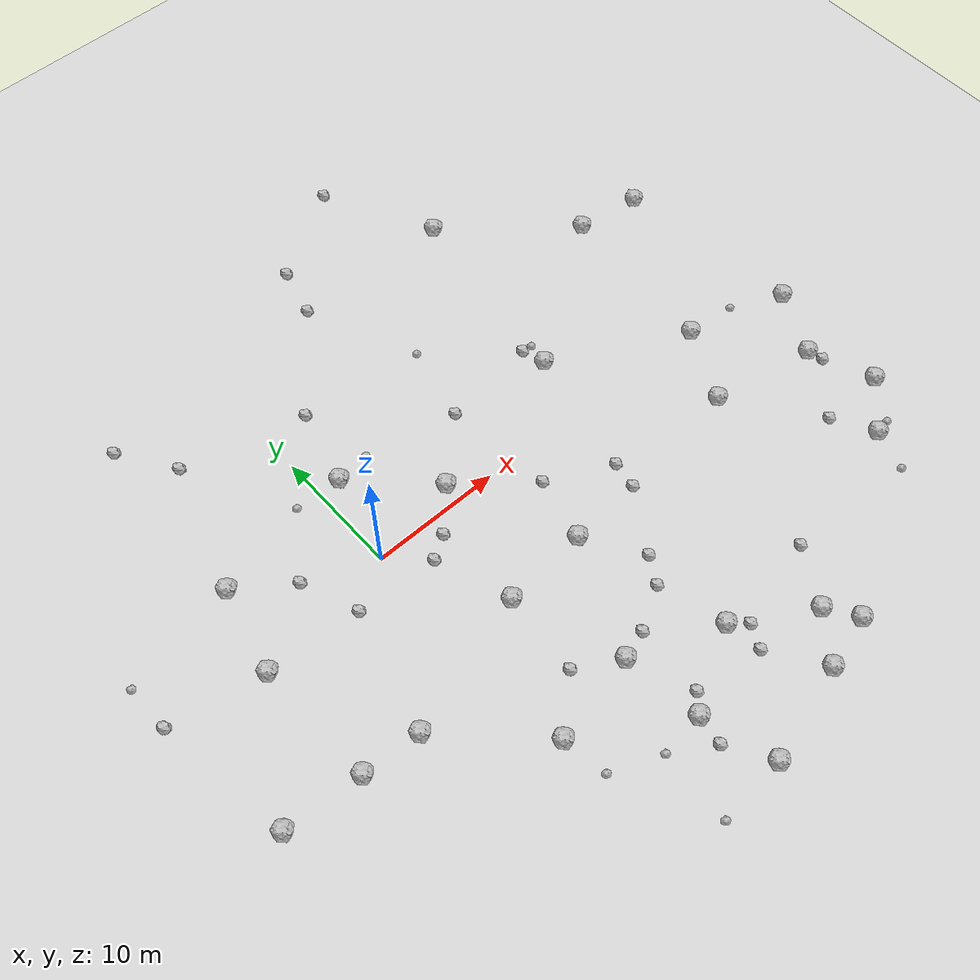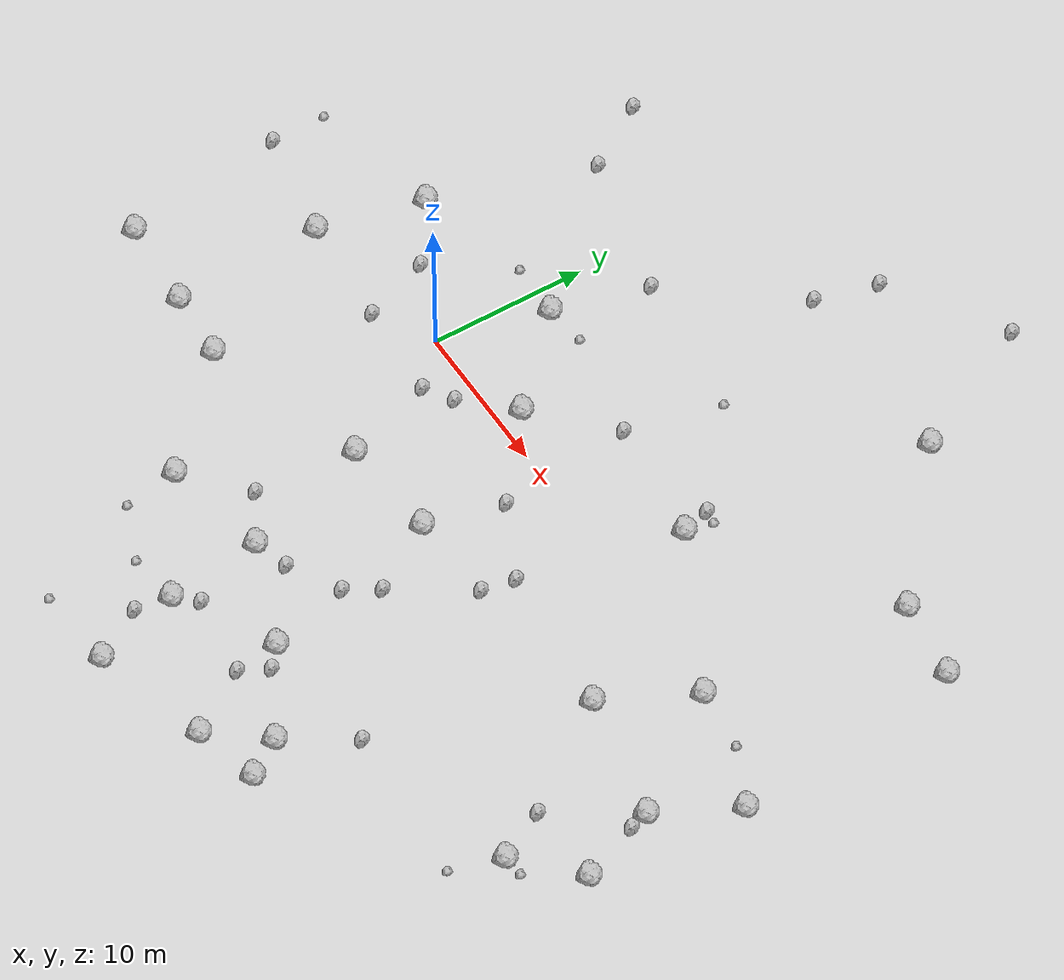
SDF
<sdf version="1.6">
 <world name="default">
  <include><uri>model://custom_ground</uri></include>
  <include><uri>model://sun</uri></include>
  <model name="rock1_0_0">
   <include><uri>model://rock1</uri><pose>14.003152754416249 -19.172089309877126 0.5 0 0 0</pose></include>
  </model>
  <model name="rock1_0_1">
   <include><uri>model://rock1</uri><pose>-10.769497221475962 -1.6153621248733714 0.5 0 0 0</pose></include>
  </model>
  <model name="rock1_0_2">
   <include><uri>model://rock1</uri><pose>-9.219295211612037 5.029225498820701 0.5 0 0 0</pose></include>
  </model>
  <model name="rock1_0_3">
   <include><uri>model://rock1</uri><pose>26.798721019652056 -6.222210888823977 0.5 0 0 0</pose></include>
  </model>
  <model name="rock1_0_4">
   <include><uri>model://rock1</uri><pose>-16.409507815319724 -10.679864082211793 0.5 0 0 0</pose></include>
  </model>
  <model name="rock1_0_5">
   <include><uri>model://rock1</uri><pose>21.055822012386884 -24.901092174642812 0.5 0 0 0</pose></include>
  </model>
  <model name="rock1_0_6">
   <include><uri>model://rock1</uri><pose>34.85470821379378 -7.82175812655511 0.5 0 0 0</pose></include>
  </model>
  <model name="rock1_0_7">
   <include><uri>model://rock1</uri><pose>7.269582818066841 -16.510152945980835 0.5 0 0 0</pose></include>
  </model>
  <model name="rock1_0_8">
   <include><uri>model://rock1</uri><pose>37.43791030881973 -2.932541775579651 0.5 0 0 0</pose></include>
  </model>
  <model name="rock1_0_9">
   <include><uri>model://rock1</uri><pose>21.78607754828959 19.998094251555756 0.5 0 0 0</pose></include>
  </model>
  <model name="rock1_0_10">
   <include><uri>model://rock1</uri><pose>30.75779689441147 12.34537848764922 0.5 0 0 0</pose></include>
  </model>
  <model name="rock1_0_11">
   <include><uri>model://rock1</uri><pose>33.23190222995296 -15.998293530328434 0.5 0 0 0</pose></include>
  </model>
  <model name="rock1_0_12">
   <include><uri>model://rock1</uri><pose>-10.50353050738606 -11.117603569233875 0.5 0 0 0</pose></include>
  </model>
  <model name="rock1_0_13">
   <include><uri>model://rock1</uri><pose>16.944692215354152 -25.94789619877936 0.5 0 0 0</pose></include>
  </model>
  <model name="rock1_0_14">
   <include><uri>model://rock1</uri><pose>-6.054517044995237 -11.423847118010645 0.5 0 0 0</pose></include>
  </model>
  <model name="rock1_0_15">
   <include><uri>model://rock1</uri><pose>7.972226254529836 -22.481924310800768 0.5 0 0 0</pose></include>
  </model>
  <model name="rock1_0_16">
   <include><uri>model://rock1</uri><pose>29.67631738772043 -0.6907466967468707 0.5 0 0 0</pose></include>
  </model>
  <model name="rock1_0_17">
   <include><uri>model://rock1</uri><pose>19.588181543198026 -22.6142936922495 0.5 0 0 0</pose></include>
  </model>
  <model name="rock1_0_18">
   <include><uri>model://rock1</uri><pose>35.79826095948114 11.627722984927736 0.5 0 0 0</pose></include>
  </model>
  <model name="rock1_0_19">
   <include><uri>model://rock1</uri><pose>11.194022819033098 -7.799987242348646 0.5 0 0 0</pose></include>
  </model>
  <model name="rock1_0_20">
   <include><uri>model://rock1</uri><pose>7.173253872946997 1.4170511199053806 0.5 0 0 0</pose></include>
  </model>
  <model name="rock1_0_21">
   <include><uri>model://rock1</uri><pose>4.626203410921704 -8.291863220499462 0.5 0 0 0</pose></include>
  </model>
  <model name="rock1_0_22">
   <include><uri>model://rock1</uri><pose>9.550269785202008 -27.939003110961423 0.5 0 0 0</pose></include>
  </model>
  <model name="rock1_0_23">
   <include><uri>model://rock1</uri><pose>36.696982578919226 -12.739101668206189 0.5 0 0 0</pose></include>
  </model>
  <model name="rock1_0_24">
   <include><uri>model://rock1</uri><pose>1.812405688505244 6.779470506799619 0.5 0 0 0</pose></include>
  </model>
  <model name="rock1_0_25">
   <include><uri>model://rock1</uri><pose>19.525953290873247 4.636568248175415 0.5 0 0 0</pose></include>
  </model>
  <model name="rock1_0_26">
   <include><uri>model://rock1</uri><pose>0.4283806910543895 -17.83017192072367 0.5 0 0 0</pose></include>
  </model>
  <model name="rock2_0_0">
   <include><uri>model://rock2</uri><pose>22.115333299509828 -18.475516153143587 0.3 0 0 0</pose></include>
  </model>
  <model name="rock2_0_1">
   <include><uri>model://rock2</uri><pose>9.296399754992926 20.259388664598745 0.3 0 0 0</pose></include>
  </model>
  <model name="rock2_0_2">
   <include><uri>model://rock2</uri><pose>2.6312842386152084 -2.528047752219152 0.3 0 0 0</pose></include>
  </model>
  <model name="rock2_0_3">
   <include><uri>model://rock2</uri><pose>16.862816089835718 -7.390283353298976 0.3 0 0 0</pose></include>
  </model>
  <model name="rock2_0_4">
   <include><uri>model://rock2</uri><pose>18.973475793024406 6.493884570623841 0.3 0 0 0</pose></include>
  </model>
  <model name="rock2_0_5">
   <include><uri>model://rock2</uri><pose>15.210191729259876 -20.2191616102443 0.3 0 0 0</pose></include>
  </model>
  <model name="rock2_0_6">
   <include><uri>model://rock2</uri><pose>3.344012177440643 12.772946332731607 0.3 0 0 0</pose></include>
  </model>
  <model name="rock2_0_7">
   <include><uri>model://rock2</uri><pose>17.459570901677466 28.67395238107705 0.3 0 0 0</pose></include>
  </model>
  <model name="rock2_0_8">
   <include><uri>model://rock2</uri><pose>7.583410609726428 -24.6860163267105 0.3 0 0 0</pose></include>
  </model>
  <model name="rock2_0_9">
   <include><uri>model://rock2</uri><pose>11.540274373922912 5.612574066023626 0.3 0 0 0</pose></include>
  </model>
  <model name="rock2_0_10">
   <include><uri>model://rock2</uri><pose>31.526264110691855 -12.830426750431883 0.3 0 0 0</pose></include>
  </model>
  <model name="rock2_0_11">
   <include><uri>model://rock2</uri><pose>-3.623604083262105 -2.113262353885318 0.3 0 0 0</pose></include>
  </model>
  <model name="rock2_0_12">
   <include><uri>model://rock2</uri><pose>13.806293932558418 -12.044869276532594 0.3 0 0 0</pose></include>
  </model>
  <model name="rock2_0_13">
   <include><uri>model://rock2</uri><pose>4.001837810359202 -14.59295799486269 0.3 0 0 0</pose></include>
  </model>
  <model name="rock2_0_14">
   <include><uri>model://rock2</uri><pose>14.307886913518352 -21.939365525578815 0.3 0 0 0</pose></include>
  </model>
  <model name="rock2_0_15">
   <include><uri>model://rock2</uri><pose>-5.25988311911183 2.222010134946757 0.3 0 0 0</pose></include>
  </model>
  <model name="rock2_0_16">
   <include><uri>model://rock2</uri><pose>-18.044376271620685 -0.23067712467892676 0.3 0 0 0</pose></include>
  </model>
  <model name="rock2_0_17">
   <include><uri>model://rock2</uri><pose>-8.84563420867927 19.3418294086091 0.3 0 0 0</pose></include>
  </model>
  <model name="rock2_0_18">
   <include><uri>model://rock2</uri><pose>17.253158023210958 -5.286549872726731 0.3 0 0 0</pose></include>
  </model>
  <model name="rock2_0_19">
   <include><uri>model://rock2</uri><pose>9.074251532045952 -21.188228978142877 0.3 0 0 0</pose></include>
  </model>
  <model name="rock2_0_20">
   <include><uri>model://rock2</uri><pose>12.36185200655627 -2.8801964644880726 0.3 0 0 0</pose></include>
  </model>
  <model name="rock2_0_21">
   <include><uri>model://rock2</uri><pose>12.608125451565002 -14.039496326869124 0.3 0 0 0</pose></include>
  </model>
  <model name="rock2_0_22">
   <include><uri>model://rock2</uri><pose>9.448101055206397 -15.81849575716401 0.3 0 0 0</pose></include>
  </model>
  <model name="rock2_0_23">
   <include><uri>model://rock2</uri><pose>-6.128046957912275 15.135694417246341 0.3 0 0 0</pose></include>
  </model>
  <model name="rock2_0_24">
   <include><uri>model://rock2</uri><pose>35.145760665350885 -8.98308375169989 0.3 0 0 0</pose></include>
  </model>
  <model name="rock2_0_25">
   <include><uri>model://rock2</uri><pose>4.394007097871974 -1.4110272061156586 0.3 0 0 0</pose></include>
  </model>
  <model name="rock2_0_26">
   <include><uri>model://rock2</uri><pose>10.318676752546448 24.19888108340242 0.3 0 0 0</pose></include>
  </model>
  <model name="rock3_0_0">
   <include><uri>model://rock3</uri><pose>19.790943797819182 6.389377425410096 0.2 0 0 0</pose></include>
  </model>
  <model name="rock3_0_1">
   <include><uri>model://rock3</uri><pose>4.416686359396746 7.112292163795942 0.2 0 0 0</pose></include>
  </model>
  <model name="rock3_0_2">
   <include><uri>model://rock3</uri><pose>32.1236234990863 -19.12061555949971 0.2 0 0 0</pose></include>
  </model>
  <model name="rock3_0_3">
   <include><uri>model://rock3</uri><pose>4.551588826758671 -22.84134099825445 0.2 0 0 0</pose></include>
  </model>
  <model name="rock3_0_4">
   <include><uri>model://rock3</uri><pose>0.8661424117122749 -21.276999499638055 0.2 0 0 0</pose></include>
  </model>
  <model name="rock3_0_5">
   <include><uri>model://rock3</uri><pose>-18.13497089999223 3.3366880043515295 0.2 0 0 0</pose></include>
  </model>
  <model name="rock3_0_6">
   <include><uri>model://rock3</uri><pose>33.55236873281782 -1.077258993307236 0.2 0 0 0</pose></include>
  </model>
  <model name="rock3_0_7">
   <include><uri>model://rock3</uri><pose>34.43744886997728 -15.83802587019109 0.2 0 0 0</pose></include>
  </model>
  <model name="rock3_0_8">
   <include><uri>model://rock3</uri><pose>4.245208825331023 -28.341628746355468 0.2 0 0 0</pose></include>
  </model>
  <model name="rock3_0_9">
   <include><uri>model://rock3</uri><pose>12.91722233113461 11.578956316169595 0.2 0 0 0</pose></include>
  </model>
  <model name="rock3_0_10">
   <include><uri>model://rock3</uri><pose>-1.8823550049596527 6.952105621658063 0.2 0 0 0</pose></include>
  </model>
 </world>
</sdf>
